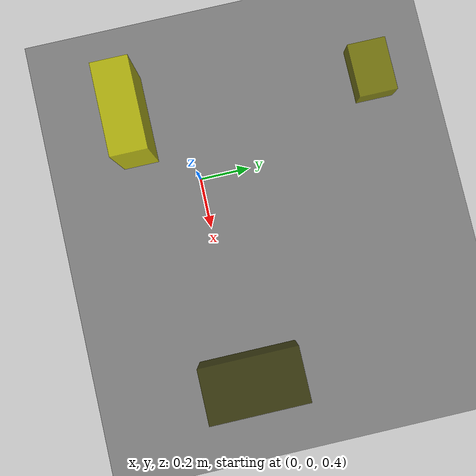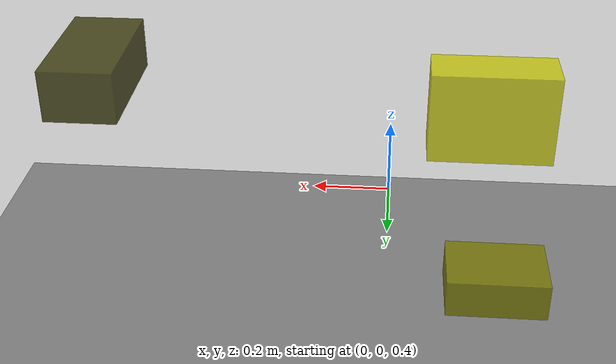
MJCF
<?xml version="1.0"?>
<mujoco model="obstacle_scene">
  <compiler angle="radian" coordinate="local"/>
  <option timestep="0.001" gravity="0 0 -9.81"/>

  <asset>
    <material name="obstacle_mat" rgba="0.8 0.8 0.0 0.8"/>
    <material name="ground_mat" rgba="0.5 0.5 0.5 1"/>
  </asset>

  <worldbody>
    <!-- Ground plane -->
    <geom name="ground" type="plane" size="3 3 0.1" material="ground_mat"/>

    <!-- Obstacles -->
    <body name="obstacle_0" pos="0.757023 0.038437 0.751778">
      <geom name="obs_0" type="box" size="0.091946 0.168233 0.067827" rgba="0.2 0.2 0.0 0.8"/>
    </body>
    <body name="obstacle_1" pos="-0.212707 0.700008 0.645502">
      <geom name="obs_1" type="box" size="0.098181 0.069183 0.038763" rgba="0.5 0.5 0.0 0.8"/>
    </body>
    <body name="obstacle_2" pos="-0.282681 -0.219333 0.537438">
      <geom name="obs_2" type="box" size="0.176481 0.070483 0.133317" rgba="0.8 0.8 0.0 0.8"/>
    </body>
  </worldbody>
</mujoco>
